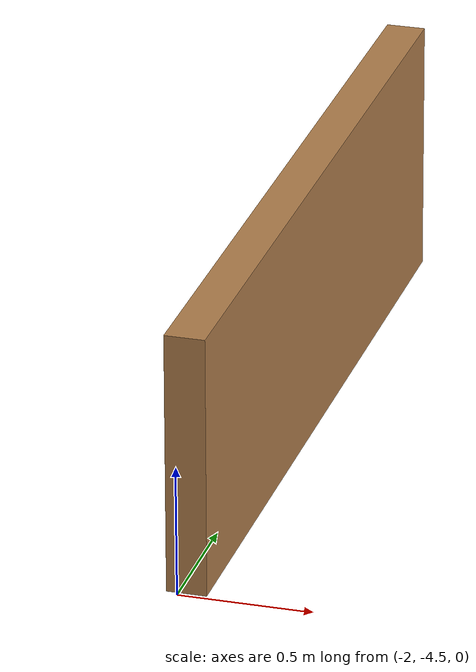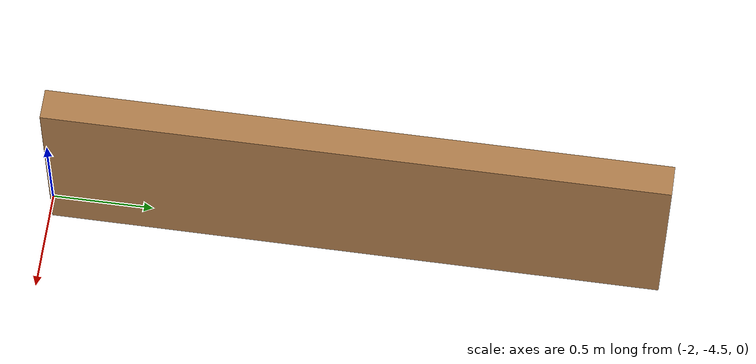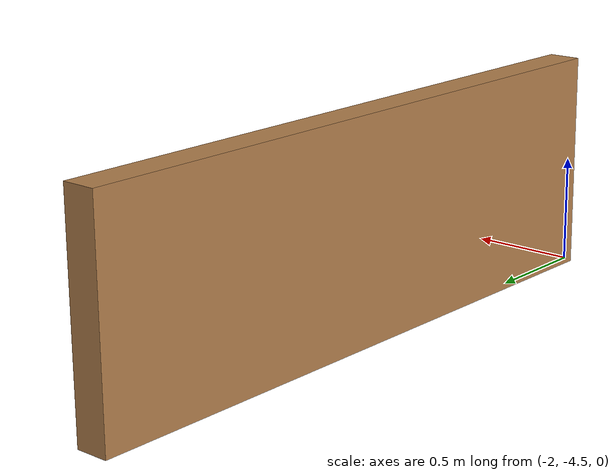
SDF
<?xml version='1.0'?>
<sdf version='1.6'>
  <model name='h_wall'>
    <pose frame=''>-1.97 -2.985 0 0 -0 0</pose>
    <link name='Wall_0'>
      <collision name='Wall_0_Collision'>
        <geometry>
          <box>
            <size>3 0.15 1</size>
          </box>
        </geometry>
        <pose frame=''>0 0 0.5 0 -0 0</pose>
      </collision>
      <visual name='Wall_0_Visual'>
        <pose frame=''>0 0 0.5 0 -0 0</pose>
        <geometry>
          <box>
            <size>3 0.15 1</size>
          </box>
        </geometry>
        <material>
          <script>
            <uri>file://media/materials/scripts/gazebo.material</uri>
            <name>Gazebo/Wood</name>
          </script>
          <ambient>1 1 1 1</ambient>
        </material>
        <meta>
          <layer>0</layer>
        </meta>
      </visual>
      <pose frame=''>0 0 0 0 -0 -1.5708</pose>
    </link>
    <static>1</static>
  </model>
</sdf>
